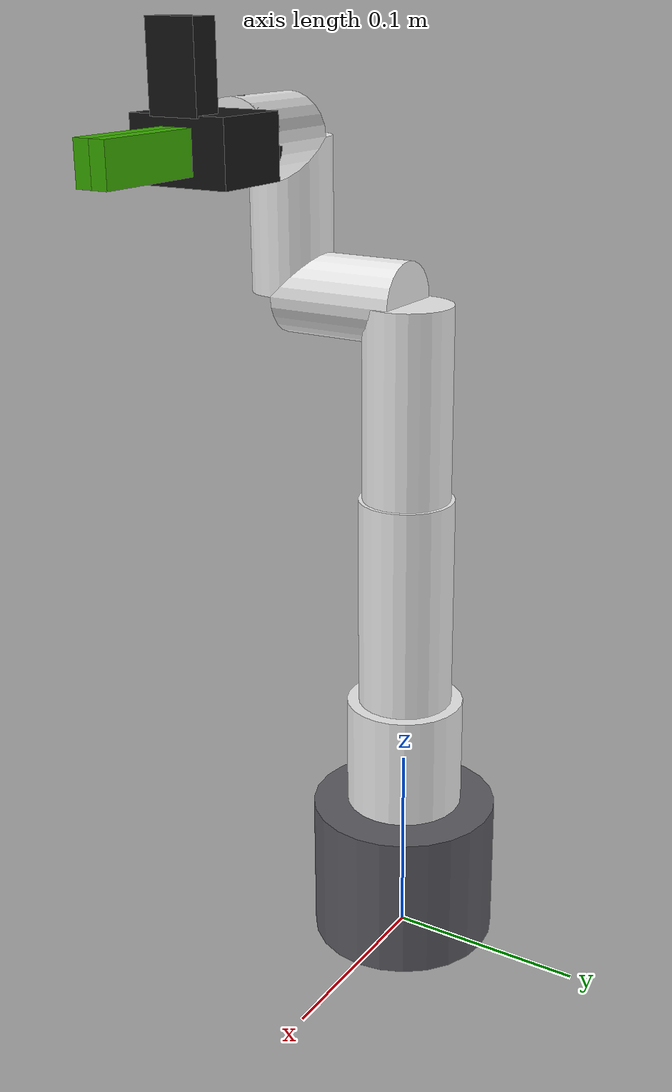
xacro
<?xml version="1.0"?>
<!--
  Descripcion completa de la celda JetCobot.
  Uso:  xacro jetcobot.urdf.xacro sim_mode:=mock|gazebo|real modelo:=yahboom|simple
-->
<robot xmlns:xacro="http://www.ros.org/wiki/xacro" name="jetcobot">
  <xacro:arg name="sim_mode" default="mock"/>
  <xacro:arg name="prefix" default=""/>
  <xacro:arg name="tcp_offset" default="0.095"/>
  <xacro:arg name="modelo" default="simple"/>
  <xacro:arg name="controllers_file" default="$(find jc_description)/config/ros2_controllers.yaml"/>

  <xacro:include filename="$(find jc_description)/urdf/jetcobot_macro.xacro"/>
  <xacro:include filename="$(find jc_description)/urdf/jetcobot.ros2_control.xacro"/>
  <xacro:include filename="$(find jc_description)/urdf/jetcobot.gazebo.xacro"/>

  <link name="world"/>

  <xacro:jetcobot prefix="$(arg prefix)" parent="world" tcp_offset="$(arg tcp_offset)" modelo="$(arg modelo)"/>
  <xacro:jetcobot_ros2_control prefix="$(arg prefix)" sim_mode="$(arg sim_mode)"/>

  <xacro:if value="${'$(arg sim_mode)' == 'gazebo'}">
    <xacro:jetcobot_gazebo prefix="$(arg prefix)" controllers_file="$(arg controllers_file)"/>
  </xacro:if>
</robot>

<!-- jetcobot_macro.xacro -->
<robot xmlns:xacro="http://www.ros.org/wiki/xacro">

  <xacro:property name="PI" value="3.14159265359"/>
  <xacro:property name="DEG" value="${PI/180.0}"/>
  <xacro:property name="VEL" value="1.5"/>    <!-- rad/s, limite conservador para planificacion -->
  <xacro:property name="EFF" value="5.0"/>    <!-- N.m (referencial) -->

  <!-- Inercia de un cilindro solido orientado segun su eje z local -->
  <xacro:macro name="cyl_inertial" params="m r h xyz rpy">
    <inertial>
      <origin xyz="${xyz}" rpy="${rpy}"/>
      <mass value="${m}"/>
      <inertia ixx="${m*(3*r*r+h*h)/12}" ixy="0" ixz="0"
               iyy="${m*(3*r*r+h*h)/12}" iyz="0" izz="${m*r*r/2}"/>
    </inertial>
  </xacro:macro>

  <xacro:macro name="box_inertial" params="m x y z xyz">
    <inertial>
      <origin xyz="${xyz}" rpy="0 0 0"/>
      <mass value="${m}"/>
      <inertia ixx="${m*(y*y+z*z)/12}" ixy="0" ixz="0"
               iyy="${m*(x*x+z*z)/12}" iyz="0" izz="${m*(x*x+y*y)/12}"/>
    </inertial>
  </xacro:macro>

  <!-- Eslabon cilindrico con visual + colision + inercia -->
  <xacro:macro name="cyl_link" params="name r h xyz rpy m color modelo:=simple mesh:='' mxyz:='0 0 0' mrpy:='0 0 0' mcolor:=blanco">
    <link name="${name}">
      <xacro:if value="${modelo == 'yahboom' and mesh != ''}">
      <visual>
        <origin xyz="${mxyz}" rpy="${mrpy}"/>
        <geometry><mesh filename="package://jc_description/meshes/yahboom/${mesh}"/></geometry>
        <material name="${mcolor}"/>
      </visual>
      </xacro:if>
      <xacro:unless value="${modelo == 'yahboom' and mesh != ''}">
      <visual>
        <origin xyz="${xyz}" rpy="${rpy}"/>
        <geometry><cylinder radius="${r}" length="${h}"/></geometry>
        <material name="${color}"/>
      </visual>
      </xacro:unless>
      <collision>
        <origin xyz="${xyz}" rpy="${rpy}"/>
        <geometry><cylinder radius="${r}" length="${h}"/></geometry>
      </collision>
      <xacro:cyl_inertial m="${m}" r="${r}" h="${h}" xyz="${xyz}" rpy="${rpy}"/>
    </link>
  </xacro:macro>

  <xacro:macro name="jetcobot" params="prefix:='' parent:=world tcp_offset:=0.095 modelo:=simple
                                         cam_x:=0.0 cam_y:=-0.034 cam_z:=0.034">

    <material name="blanco"><color rgba="0.92 0.92 0.92 1"/></material>
    <material name="gris"><color rgba="0.35 0.35 0.38 1"/></material>
    <material name="negro"><color rgba="0.08 0.08 0.08 1"/></material>
    <material name="verde_sena"><color rgba="0.22 0.66 0.0 1"/></material>

    <!-- ===================== BASE ===================== -->
    <link name="${prefix}base_link">
      <xacro:if value="${modelo == 'yahboom'}">
      <visual>
        <origin xyz="0.00000 0.00000 0.00000" rpy="0.00000 -0.00000 0.00000"/>
        <geometry><mesh filename="package://jc_description/meshes/yahboom/base_link.STL"/></geometry>
        <material name="gris"/>
      </visual>
      </xacro:if>
      <xacro:unless value="${modelo == 'yahboom'}">
      <visual>
        <origin xyz="0 0 0.038" rpy="0 0 0"/>
        <geometry><cylinder radius="0.048" length="0.076"/></geometry>
        <material name="gris"/>
      </visual>
      </xacro:unless>
      <collision>
        <origin xyz="0 0 0.038" rpy="0 0 0"/>
        <geometry><cylinder radius="0.048" length="0.076"/></geometry>
      </collision>
      <xacro:cyl_inertial m="0.49" r="0.048" h="0.076" xyz="0 0 0.038" rpy="0 0 0"/>
    </link>

    <joint name="${prefix}base_joint" type="fixed">
      <parent link="${parent}"/>
      <child link="${prefix}base_link"/>
      <origin xyz="0 0 0" rpy="0 0 0"/>
    </joint>

    <xacro:cyl_link name="${prefix}link1" r="0.030" h="0.058" xyz="0 0 -0.029" rpy="0 0 0" m="0.12" color="blanco"
        modelo="${modelo}" mesh="1_Link.STL" mxyz="0.00000 0.00000 -0.06094" mrpy="0.00000 -0.00000 0.00000"/>
    <joint name="${prefix}joint1" type="revolute">
      <parent link="${prefix}base_link"/>
      <child link="${prefix}link1"/>
      <!-- altura de J1 sobre la base del JetCobot de Yahboom (en el myCobot 280 JN es 0.15756) -->
      <origin xyz="0 0 0.13546" rpy="0 0 0"/>
      <axis xyz="0 0 1"/>
      <limit lower="${-168*DEG}" upper="${168*DEG}" effort="${EFF}" velocity="${VEL}"/>
    </joint>

    <xacro:cyl_link name="${prefix}link2" r="0.024" h="0.1104" xyz="-0.0552 0 0" rpy="0 ${PI/2} 0" m="0.12" color="blanco"
        modelo="${modelo}" mesh="2_Link.STL" mxyz="-0.00006 -0.00003 0.03500" mrpy="-1.57080 0.00000 1.57080"/>
    <joint name="${prefix}joint2" type="revolute">
      <parent link="${prefix}link1"/>
      <child link="${prefix}link2"/>
      <origin xyz="0 0 -0.001" rpy="0 ${PI/2} ${-PI/2}"/>
      <axis xyz="0 0 1"/>
      <limit lower="${-135*DEG}" upper="${135*DEG}" effort="${EFF}" velocity="${VEL}"/>
    </joint>

    <link name="${prefix}link3">
      <xacro:if value="${modelo == 'yahboom'}">
      <visual>
        <origin xyz="0.00034 -0.00003 0.02821" rpy="-1.57080 0.00000 1.57080"/>
        <geometry><mesh filename="package://jc_description/meshes/yahboom/3_Link.STL"/></geometry>
        <material name="blanco"/>
      </visual>
      </xacro:if>
      <xacro:unless value="${modelo == 'yahboom'}">
      <visual>
        <origin xyz="-0.048 0 0" rpy="0 ${PI/2} 0"/>
        <geometry><cylinder radius="0.022" length="0.096"/></geometry>
        <material name="blanco"/>
      </visual>
      <visual>
        <origin xyz="-0.096 0 0.0323" rpy="0 0 0"/>
        <geometry><cylinder radius="0.020" length="0.0646"/></geometry>
        <material name="blanco"/>
      </visual>
      </xacro:unless>
      <collision>
        <origin xyz="-0.048 0 0" rpy="0 ${PI/2} 0"/>
        <geometry><cylinder radius="0.022" length="0.096"/></geometry>
      </collision>
      <collision>
        <origin xyz="-0.096 0 0.0323" rpy="0 0 0"/>
        <geometry><cylinder radius="0.020" length="0.0646"/></geometry>
      </collision>
      <xacro:cyl_inertial m="0.10" r="0.022" h="0.096" xyz="-0.06 0 0.01" rpy="0 ${PI/2} 0"/>
    </link>
    <joint name="${prefix}joint3" type="revolute">
      <parent link="${prefix}link2"/>
      <child link="${prefix}link3"/>
      <origin xyz="-0.1104 0 0" rpy="0 0 0"/>
      <axis xyz="0 0 1"/>
      <limit lower="${-150*DEG}" upper="${150*DEG}" effort="${EFF}" velocity="${VEL}"/>
    </joint>

    <xacro:cyl_link name="${prefix}link4" r="0.020" h="0.07318" xyz="0 -0.03659 0" rpy="${PI/2} 0 0" m="0.08" color="blanco"
        modelo="${modelo}" mesh="4_Link.STL" mxyz="0.00003 0.00034 -0.03506" mrpy="-1.57080 0.00000 -3.14159"/>
    <joint name="${prefix}joint4" type="revolute">
      <parent link="${prefix}link3"/>
      <child link="${prefix}link4"/>
      <origin xyz="-0.096 0 0.06462" rpy="0 0 ${-PI/2}"/>
      <axis xyz="0 0 1"/>
      <limit lower="${-145*DEG}" upper="${145*DEG}" effort="${EFF}" velocity="${VEL}"/>
    </joint>

    <xacro:cyl_link name="${prefix}link5" r="0.020" h="0.0456" xyz="0 0.0228 0" rpy="${PI/2} 0 0" m="0.07" color="blanco"
        modelo="${modelo}" mesh="5_Link.STL" mxyz="-0.00152 -0.00005 -0.03869" mrpy="-0.00000 0.00000 1.57080"/>
    <joint name="${prefix}joint5" type="revolute">
      <parent link="${prefix}link4"/>
      <child link="${prefix}link5"/>
      <origin xyz="0 -0.07318 0" rpy="${PI/2} ${-PI/2} 0"/>
      <axis xyz="0 0 1"/>
      <limit lower="${-155*DEG}" upper="${160*DEG}" effort="${EFF}" velocity="${VEL}"/>
    </joint>

    <!-- ===================== J6 (brida) ===================== -->
    <xacro:cyl_link name="${prefix}link6_flange" r="0.020" h="0.010" xyz="0 0 -0.005" rpy="0 0 0" m="0.03" color="negro"
        modelo="${modelo}" mesh="6_Link.STL" mxyz="-0.00150 -0.00123 -0.01369" mrpy="3.14159 -1.57080 -1.57080"/>
    <joint name="${prefix}joint6" type="revolute">
      <parent link="${prefix}link5"/>
      <child link="${prefix}link6_flange"/>
      <origin xyz="0 0.0456 0" rpy="${-PI/2} 0 0"/>
      <axis xyz="0 0 1"/>
      <limit lower="${-180*DEG}" upper="${180*DEG}" effort="${EFF}" velocity="${VEL}"/>
    </joint>

    <!-- ===================== PINZA (simplificada, paralela) ===================== -->
    <link name="${prefix}gripper_base">
      <xacro:if value="${modelo == 'yahboom'}">
      <visual>
        <origin xyz="-0.00144 0.00650 0.05022" rpy="3.14159 -1.57080 -1.57080"/>
        <geometry><mesh filename="package://jc_description/meshes/yahboom/jiazhua_Link.STL"/></geometry>
        <material name="negro"/>
      </visual>
      </xacro:if>
      <xacro:unless value="${modelo == 'yahboom'}">
      <visual>
        <origin xyz="0 0 0.020" rpy="0 0 0"/>
        <geometry><box size="0.050 0.030 0.040"/></geometry>
        <material name="negro"/>
      </visual>
      </xacro:unless>
      <collision>
        <origin xyz="0 0 0.020" rpy="0 0 0"/>
        <geometry><box size="0.050 0.030 0.040"/></geometry>
      </collision>
      <xacro:box_inertial m="0.08" x="0.05" y="0.03" z="0.04" xyz="0 0 0.02"/>
    </link>
    <joint name="${prefix}gripper_mount" type="fixed">
      <parent link="${prefix}link6_flange"/>
      <child link="${prefix}gripper_base"/>
      <origin xyz="0 0 0" rpy="0 0 0"/>
    </joint>

    <xacro:macro name="finger" params="side sign">
      <link name="${prefix}gripper_${side}_finger">
        <xacro:unless value="${modelo == 'yahboom'}">
        <visual>
          <origin xyz="0 0 0.0275" rpy="0 0 0"/>
          <geometry><box size="0.008 0.020 0.055"/></geometry>
          <material name="verde_sena"/>
        </visual>
        </xacro:unless>
        <collision>
          <origin xyz="0 0 0.0275" rpy="0 0 0"/>
          <geometry><box size="0.008 0.020 0.055"/></geometry>
        </collision>
        <xacro:box_inertial m="0.01" x="0.008" y="0.02" z="0.055" xyz="0 0 0.0275"/>
      </link>
      <joint name="${prefix}gripper_${side}_joint" type="prismatic">
        <parent link="${prefix}gripper_base"/>
        <child link="${prefix}gripper_${side}_finger"/>
        <origin xyz="${sign*0.004} 0 0.040" rpy="0 0 0"/>
        <axis xyz="${sign} 0 0"/>
        <!-- 0 = cerrada; 0.017 m por dedo = apertura total ~34 mm -->
        <limit lower="0.0" upper="0.017" effort="20.0" velocity="0.05"/>
      </joint>
    </xacro:macro>
    <xacro:finger side="left" sign="1"/>
    <xacro:finger side="right" sign="-1"/>

    <!-- Punto central de la herramienta (TCP). VERIFICAR tcp_offset midiendo la pinza real. -->
    <link name="${prefix}tcp"/>
    <joint name="${prefix}tcp_joint" type="fixed">
      <parent link="${prefix}link6_flange"/>
      <child link="${prefix}tcp"/>
      <origin xyz="0 0 ${tcp_offset}" rpy="0 0 0"/>
    </joint>

    <!-- ===================== CAMARA EN MANO (eye-in-hand) ===================== -->
    <!-- Valor NOMINAL. El valor real se obtiene con la calibracion mano-ojo (Dia 4). -->
    <xacro:if value="${modelo == 'yahboom'}">
      <link name="${prefix}camera_body">
        <visual>
          <origin xyz="0 0 0" rpy="0 0 0"/>
          <geometry><mesh filename="package://jc_description/meshes/yahboom/camera_Link.STL"/></geometry>
          <material name="negro"/>
        </visual>
      </link>
      <joint name="${prefix}camera_body_mount" type="fixed">
        <parent link="${prefix}link6_flange"/>
        <child link="${prefix}camera_body"/>
        <origin xyz="-0.00150 -0.03623 0.01931" rpy="3.14159 -1.57080 -1.57080"/>
      </joint>
    </xacro:if>
    <link name="${prefix}camera_link">
      <xacro:unless value="${modelo == 'yahboom'}">
      <visual>
        <origin xyz="0 0 0" rpy="0 0 0"/>
        <geometry><box size="0.015 0.040 0.025"/></geometry>
        <material name="negro"/>
      </visual>
      </xacro:unless>
      <collision>
        <origin xyz="0 0 0" rpy="0 0 0"/>
        <geometry><box size="0.015 0.040 0.025"/></geometry>
      </collision>
      <xacro:box_inertial m="0.02" x="0.015" y="0.04" z="0.025" xyz="0 0 0"/>
    </link>
    <joint name="${prefix}camera_mount" type="fixed">
      <parent link="${prefix}link6_flange"/>
      <child link="${prefix}camera_link"/>
      <!-- camera_link (x hacia adelante) alineado con el eje z de la brida -->
      <origin xyz="${cam_x} ${cam_y} ${cam_z}" rpy="0 ${-PI/2} 0"/>
    </joint>
    <link name="${prefix}camera_optical_frame"/>
    <joint name="${prefix}camera_optical_joint" type="fixed">
      <parent link="${prefix}camera_link"/>
      <child link="${prefix}camera_optical_frame"/>
      <!-- Convencion REP-103: optico z adelante, x derecha, y abajo -->
      <origin xyz="0 0 0" rpy="${-PI/2} 0 ${-PI/2}"/>
    </joint>
  </xacro:macro>
</robot>
